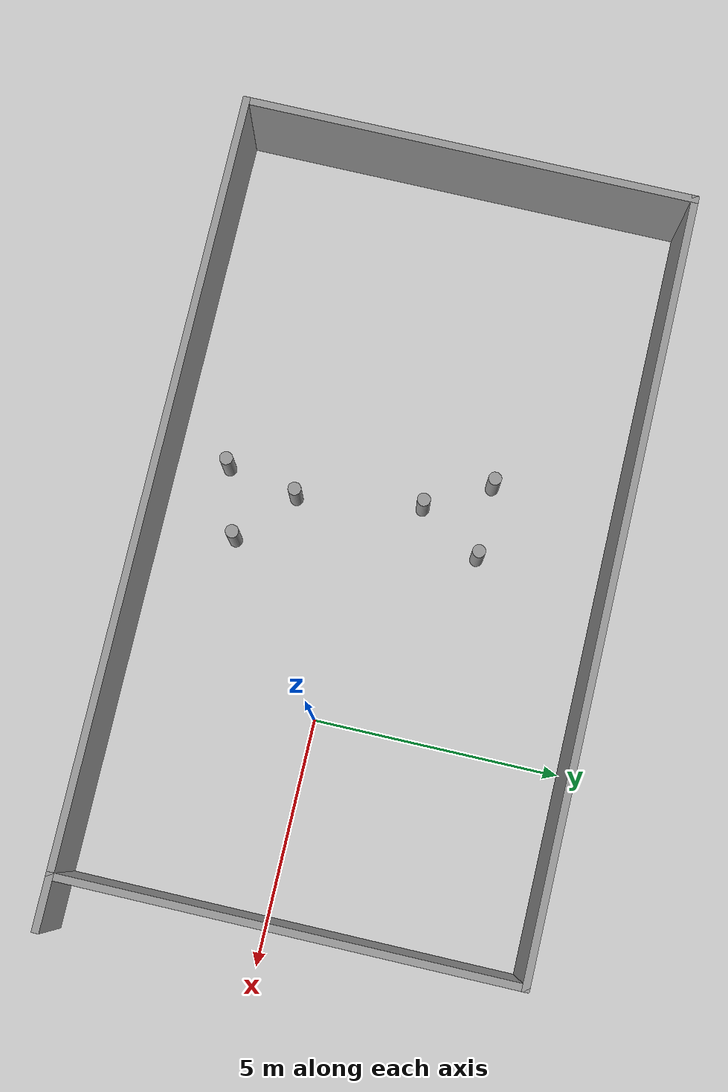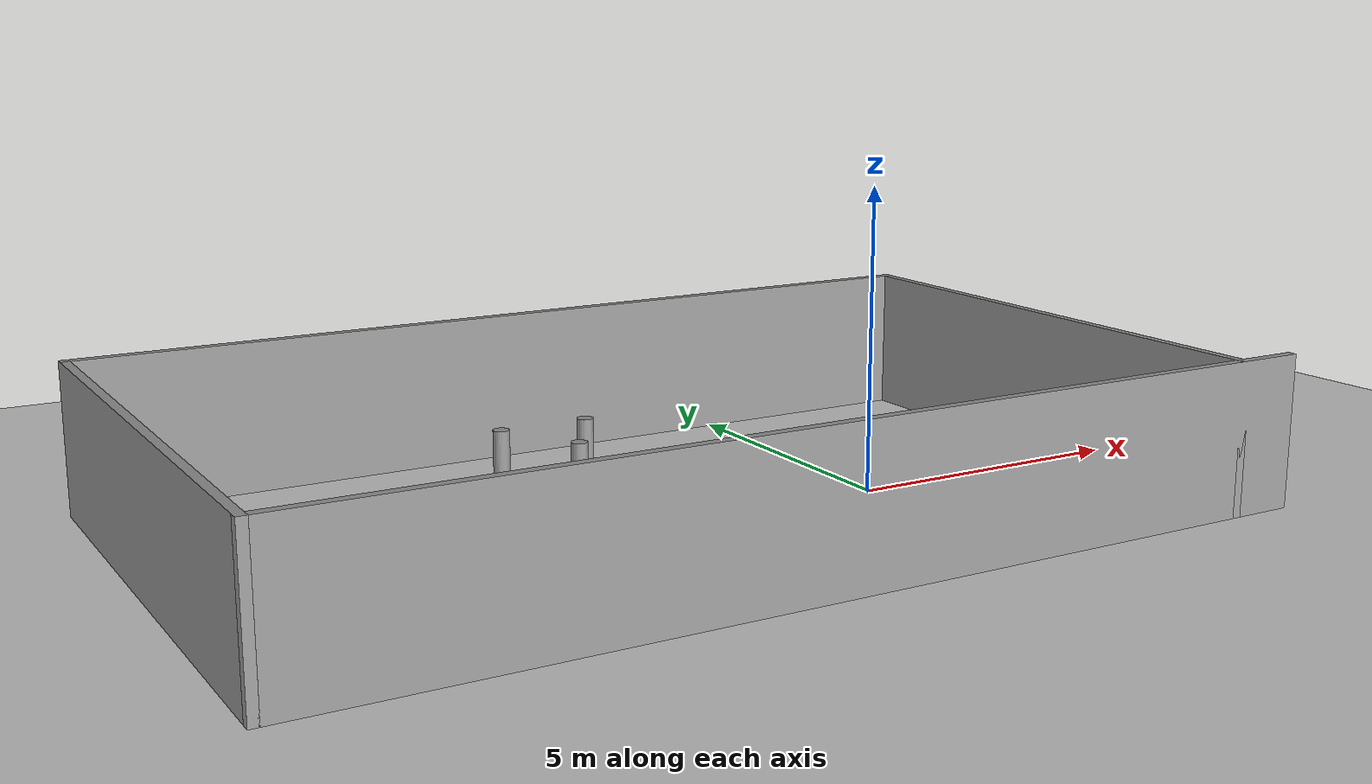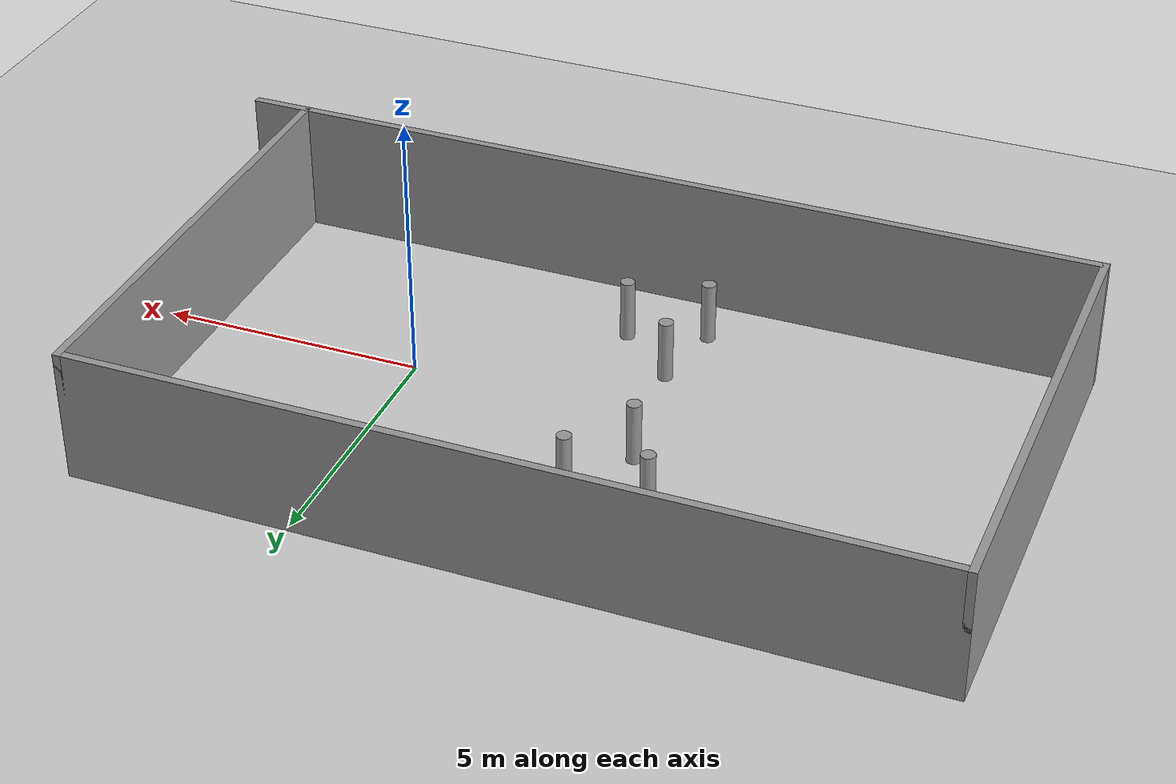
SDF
<sdf version="1.7">
 <world name="default">
  <model name="ground_plane">
   <static>1</static>
   <link name="link">
    <collision name="collision">
     <geometry><plane><normal>0 0 1</normal><size>100 100</size></plane></geometry>
     <surface>
      <contact><collide_bitmask>65535</collide_bitmask></contact>
      <friction><ode><mu>100</mu><mu2>50</mu2></ode></friction>
     </surface>
    </collision>
    <visual name="visual">
     <cast_shadows>0</cast_shadows>
     <geometry><plane><normal>0 0 1</normal><size>100 100</size></plane></geometry>
     <material>
      <script><uri>file://media/materials/scripts/gazebo.material</uri><name>Gazebo/Grey</name></script>
     </material>
    </visual>
   </link>
  </model>
  <model name="room">
   <pose>-3.22084 0.5121 0 0 -0 0</pose>
   <link name="Wall_3">
    <collision name="Wall_3_Collision">
     <geometry><box><size>16.75 0.15 2.5</size></box></geometry>
     <pose>0 0 1.25 0 -0 0</pose>
    </collision>
    <visual name="Wall_3_Visual">
     <pose>0 0 1.25 0 -0 0</pose>
     <geometry><box><size>16.75 0.15 2.5</size></box></geometry>
     <material>
      <script><uri>file://media/materials/scripts/gazebo.material</uri><name>Gazebo/Grey</name></script>
      <ambient>1 1 1 1</ambient>
     </material>
     <meta><layer>0</layer></meta>
    </visual>
    <pose>0 -4.55 0 0 -0 0</pose>
   </link>
   <link name="Wall_6">
    <collision name="Wall_6_Collision">
     <geometry><box><size>9.25 0.15 2.5</size></box></geometry>
     <pose>0 0 1.25 0 -0 0</pose>
    </collision>
    <visual name="Wall_6_Visual">
     <pose>0 0 1.25 0 -0 0</pose>
     <geometry><box><size>9.25 0.15 2.5</size></box></geometry>
     <material>
      <script><uri>file://media/materials/scripts/gazebo.material</uri><name>Gazebo/Grey</name></script>
      <ambient>1 1 1 1</ambient>
     </material>
     <meta><layer>0</layer></meta>
    </visual>
    <pose>-8.3 0 0 0 -0 1.5708</pose>
   </link>
   <link name="Wall_7">
    <collision name="Wall_7_Collision">
     <geometry><box><size>15.75 0.15 2.5</size></box></geometry>
     <pose>0 0 1.25 0 -0 0</pose>
    </collision>
    <visual name="Wall_7_Visual">
     <pose>0 0 1.25 0 -0 0</pose>
     <geometry><box><size>15.75 0.15 2.5</size></box></geometry>
     <material>
      <script><uri>file://media/materials/scripts/gazebo.material</uri><name>Gazebo/Grey</name></script>
      <ambient>1 1 1 1</ambient>
     </material>
     <meta><layer>0</layer></meta>
    </visual>
    <pose>-0.5 4.55 0 0 -0 0</pose>
   </link>
   <link name="Wall_8">
    <collision name="Wall_8_Collision">
     <geometry><box><size>9.25 0.15 2.5</size></box></geometry>
     <pose>0 0 1.25 0 -0 0</pose>
    </collision>
    <visual name="Wall_8_Visual">
     <pose>0 0 1.25 0 -0 0</pose>
     <geometry><box><size>9.25 0.15 2.5</size></box></geometry>
     <material>
      <script><uri>file://media/materials/scripts/gazebo.material</uri><name>Gazebo/Grey</name></script>
      <ambient>1 1 1 1</ambient>
     </material>
     <meta><layer>0</layer></meta>
    </visual>
    <pose>7.3 0 0 0 -0 -1.5708</pose>
   </link>
   <static>1</static>
  </model>
  <model name="triangle_lattice_0">
   <model name="smaller_cylinder">
    <model name="smaller_cylinder_1">
     <link name="link">
      <inertial>
       <mass>0.0872829</mass>
       <inertia>
        <ixx>0.0108064</ixx>
        <ixy>0</ixy>
        <ixz>0</ixz>
        <iyy>0.0108064</iyy>
        <iyz>0</iyz>
        <izz>0.000796093</izz>
       </inertia>
      </inertial>
      <visual name="visual">
       <geometry><cylinder><radius>0.135062</radius><length>1.19624</length></cylinder></geometry>
       <material>
        <script><name>Gazebo/Grey</name><uri>file://media/materials/scripts/gazebo.material</uri></script>
        <shader type="pixel"/>
       </material>
      </visual>
      <collision name="collision">
       <geometry><cylinder><radius>0.135062</radius><length>1.19624</length></cylinder></geometry>
       <surface>
        <friction>
         <ode><mu>1</mu><mu2>1</mu2><fdir1>0 0 0</fdir1><slip1>0</slip1><slip2>0</slip2></ode>
         <torsional>
          <coefficient>1</coefficient>
          <patch_radius>0</patch_radius>
          <surface_radius>0</surface_radius>
          <use_patch_radius>1</use_patch_radius>
          <ode><slip>0</slip></ode>
         </torsional>
        </friction>
        <bounce><restitution_coefficient>0</restitution_coefficient><threshold>1e+06</threshold></bounce>
        <contact>
         <collide_without_contact>0</collide_without_contact>
         <collide_without_contact_bitmask>1</collide_without_contact_bitmask>
         <collide_bitmask>1</collide_bitmask>
         <ode>
          <soft_cfm>0</soft_cfm>
          <soft_erp>0.2</soft_erp>
          <kp>1e+13</kp>
          <kd>1</kd>
          <max_vel>0.01</max_vel>
          <min_depth>0</min_depth>
         </ode>
         <bullet>
          <split_impulse>1</split_impulse>
          <split_impulse_penetration_threshold>-0.01</split_impulse_penetration_threshold>
          <soft_cfm>0</soft_cfm>
          <soft_erp>0.2</soft_erp>
          <kp>1e+13</kp>
          <kd>1</kd>
         </bullet>
        </contact>
       </surface>
      </collision>
     </link>
     <static>0</static>
     <pose>0.044198 -0.101528 0 0 -0 0</pose>
    </model>
    <static>1</static>
    <allow_auto_disable>0</allow_auto_disable>
    <pose>-3.76148 0.681051 0 0 -0 0</pose>
   </model>
   <model name="smaller_cylinder_0">
    <model name="smaller_cylinder_1">
     <link name="link">
      <inertial>
       <mass>0.0872829</mass>
       <inertia>
        <ixx>0.0108064</ixx>
        <ixy>0</ixy>
        <ixz>0</ixz>
        <iyy>0.0108064</iyy>
        <iyz>0</iyz>
        <izz>0.000796093</izz>
       </inertia>
      </inertial>
      <visual name="visual">
       <geometry><cylinder><radius>0.135062</radius><length>1.19624</length></cylinder></geometry>
       <material>
        <script><name>Gazebo/Grey</name><uri>file://media/materials/scripts/gazebo.material</uri></script>
        <shader type="pixel"/>
       </material>
      </visual>
      <collision name="collision">
       <geometry><cylinder><radius>0.135062</radius><length>1.19624</length></cylinder></geometry>
       <surface>
        <friction>
         <ode><mu>1</mu><mu2>1</mu2><fdir1>0 0 0</fdir1><slip1>0</slip1><slip2>0</slip2></ode>
         <torsional>
          <coefficient>1</coefficient>
          <patch_radius>0</patch_radius>
          <surface_radius>0</surface_radius>
          <use_patch_radius>1</use_patch_radius>
          <ode><slip>0</slip></ode>
         </torsional>
        </friction>
        <bounce><restitution_coefficient>0</restitution_coefficient><threshold>1e+06</threshold></bounce>
        <contact>
         <collide_without_contact>0</collide_without_contact>
         <collide_without_contact_bitmask>1</collide_without_contact_bitmask>
         <collide_bitmask>1</collide_bitmask>
         <ode>
          <soft_cfm>0</soft_cfm>
          <soft_erp>0.2</soft_erp>
          <kp>1e+13</kp>
          <kd>1</kd>
          <max_vel>0.01</max_vel>
          <min_depth>0</min_depth>
         </ode>
         <bullet>
          <split_impulse>1</split_impulse>
          <split_impulse_penetration_threshold>-0.01</split_impulse_penetration_threshold>
          <soft_cfm>0</soft_cfm>
          <soft_erp>0.2</soft_erp>
          <kp>1e+13</kp>
          <kd>1</kd>
         </bullet>
        </contact>
       </surface>
      </collision>
     </link>
     <static>0</static>
     <pose>0.044198 -0.101528 0 0 -0 0</pose>
    </model>
    <static>1</static>
    <allow_auto_disable>0</allow_auto_disable>
    <pose>-2.72489 1.77147 0 0 -0 0</pose>
   </model>
   <model name="smaller_cylinder_1">
    <model name="smaller_cylinder_1">
     <link name="link">
      <inertial>
       <mass>0.0872829</mass>
       <inertia>
        <ixx>0.0108064</ixx>
        <ixy>0</ixy>
        <ixz>0</ixz>
        <iyy>0.0108064</iyy>
        <iyz>0</iyz>
        <izz>0.000796093</izz>
       </inertia>
      </inertial>
      <visual name="visual">
       <geometry><cylinder><radius>0.135062</radius><length>1.19624</length></cylinder></geometry>
       <material>
        <script><name>Gazebo/Grey</name><uri>file://media/materials/scripts/gazebo.material</uri></script>
        <shader type="pixel"/>
       </material>
      </visual>
      <collision name="collision">
       <geometry><cylinder><radius>0.135062</radius><length>1.19624</length></cylinder></geometry>
       <surface>
        <friction>
         <ode><mu>1</mu><mu2>1</mu2><fdir1>0 0 0</fdir1><slip1>0</slip1><slip2>0</slip2></ode>
         <torsional>
          <coefficient>1</coefficient>
          <patch_radius>0</patch_radius>
          <surface_radius>0</surface_radius>
          <use_patch_radius>1</use_patch_radius>
          <ode><slip>0</slip></ode>
         </torsional>
        </friction>
        <bounce><restitution_coefficient>0</restitution_coefficient><threshold>1e+06</threshold></bounce>
        <contact>
         <collide_without_contact>0</collide_without_contact>
         <collide_without_contact_bitmask>1</collide_without_contact_bitmask>
         <collide_bitmask>1</collide_bitmask>
         <ode>
          <soft_cfm>0</soft_cfm>
          <soft_erp>0.2</soft_erp>
          <kp>1e+13</kp>
          <kd>1</kd>
          <max_vel>0.01</max_vel>
          <min_depth>0</min_depth>
         </ode>
         <bullet>
          <split_impulse>1</split_impulse>
          <split_impulse_penetration_threshold>-0.01</split_impulse_penetration_threshold>
          <soft_cfm>0</soft_cfm>
          <soft_erp>0.2</soft_erp>
          <kp>1e+13</kp>
          <kd>1</kd>
         </bullet>
        </contact>
       </surface>
      </collision>
     </link>
     <static>0</static>
     <pose>0.044198 -0.101528 0 0 -0 0</pose>
    </model>
    <static>1</static>
    <allow_auto_disable>0</allow_auto_disable>
    <pose>-2.31989 0.319731 0 0 -0 0</pose>
   </model>
   <static>1</static>
   <pose>-3.27212 -0.624268 0.598111 0 -0 -0.805665</pose>
  </model>
  <model name="triangle_lattice_2">
   <model name="smaller_cylinder">
    <model name="smaller_cylinder_1">
     <link name="link">
      <inertial>
       <mass>0.0872829</mass>
       <inertia>
        <ixx>0.0108064</ixx>
        <ixy>0</ixy>
        <ixz>0</ixz>
        <iyy>0.0108064</iyy>
        <iyz>0</iyz>
        <izz>0.000796093</izz>
       </inertia>
      </inertial>
      <visual name="visual">
       <geometry><cylinder><radius>0.135062</radius><length>1.19624</length></cylinder></geometry>
       <material>
        <script><name>Gazebo/Grey</name><uri>file://media/materials/scripts/gazebo.material</uri></script>
        <shader type="pixel"/>
       </material>
      </visual>
      <collision name="collision">
       <geometry><cylinder><radius>0.135062</radius><length>1.19624</length></cylinder></geometry>
       <surface>
        <friction>
         <ode><mu>1</mu><mu2>1</mu2><fdir1>0 0 0</fdir1><slip1>0</slip1><slip2>0</slip2></ode>
         <torsional>
          <coefficient>1</coefficient>
          <patch_radius>0</patch_radius>
          <surface_radius>0</surface_radius>
          <use_patch_radius>1</use_patch_radius>
          <ode><slip>0</slip></ode>
         </torsional>
        </friction>
        <bounce><restitution_coefficient>0</restitution_coefficient><threshold>1e+06</threshold></bounce>
        <contact>
         <collide_without_contact>0</collide_without_contact>
         <collide_without_contact_bitmask>1</collide_without_contact_bitmask>
         <collide_bitmask>1</collide_bitmask>
         <ode>
          <soft_cfm>0</soft_cfm>
          <soft_erp>0.2</soft_erp>
          <kp>1e+13</kp>
          <kd>1</kd>
          <max_vel>0.01</max_vel>
          <min_depth>0</min_depth>
         </ode>
         <bullet>
          <split_impulse>1</split_impulse>
          <split_impulse_penetration_threshold>-0.01</split_impulse_penetration_threshold>
          <soft_cfm>0</soft_cfm>
          <soft_erp>0.2</soft_erp>
          <kp>1e+13</kp>
          <kd>1</kd>
         </bullet>
        </contact>
       </surface>
      </collision>
     </link>
     <static>0</static>
     <pose>0.044198 -0.101528 0 0 -0 0</pose>
    </model>
    <static>1</static>
    <allow_auto_disable>0</allow_auto_disable>
    <pose>-3.76148 0.681051 0 0 -0 0</pose>
   </model>
   <model name="smaller_cylinder_0">
    <model name="smaller_cylinder_1">
     <link name="link">
      <inertial>
       <mass>0.0872829</mass>
       <inertia>
        <ixx>0.0108064</ixx>
        <ixy>0</ixy>
        <ixz>0</ixz>
        <iyy>0.0108064</iyy>
        <iyz>0</iyz>
        <izz>0.000796093</izz>
       </inertia>
      </inertial>
      <visual name="visual">
       <geometry><cylinder><radius>0.135062</radius><length>1.19624</length></cylinder></geometry>
       <material>
        <script><name>Gazebo/Grey</name><uri>file://media/materials/scripts/gazebo.material</uri></script>
        <shader type="pixel"/>
       </material>
      </visual>
      <collision name="collision">
       <geometry><cylinder><radius>0.135062</radius><length>1.19624</length></cylinder></geometry>
       <surface>
        <friction>
         <ode><mu>1</mu><mu2>1</mu2><fdir1>0 0 0</fdir1><slip1>0</slip1><slip2>0</slip2></ode>
         <torsional>
          <coefficient>1</coefficient>
          <patch_radius>0</patch_radius>
          <surface_radius>0</surface_radius>
          <use_patch_radius>1</use_patch_radius>
          <ode><slip>0</slip></ode>
         </torsional>
        </friction>
        <bounce><restitution_coefficient>0</restitution_coefficient><threshold>1e+06</threshold></bounce>
        <contact>
         <collide_without_contact>0</collide_without_contact>
         <collide_without_contact_bitmask>1</collide_without_contact_bitmask>
         <collide_bitmask>1</collide_bitmask>
         <ode>
          <soft_cfm>0</soft_cfm>
          <soft_erp>0.2</soft_erp>
          <kp>1e+13</kp>
          <kd>1</kd>
          <max_vel>0.01</max_vel>
          <min_depth>0</min_depth>
         </ode>
         <bullet>
          <split_impulse>1</split_impulse>
          <split_impulse_penetration_threshold>-0.01</split_impulse_penetration_threshold>
          <soft_cfm>0</soft_cfm>
          <soft_erp>0.2</soft_erp>
          <kp>1e+13</kp>
          <kd>1</kd>
         </bullet>
        </contact>
       </surface>
      </collision>
     </link>
     <static>0</static>
     <pose>0.044198 -0.101528 0 0 -0 0</pose>
    </model>
    <static>1</static>
    <allow_auto_disable>0</allow_auto_disable>
    <pose>-2.72489 1.77147 0 0 -0 0</pose>
   </model>
   <model name="smaller_cylinder_1">
    <model name="smaller_cylinder_1">
     <link name="link">
      <inertial>
       <mass>0.0872829</mass>
       <inertia>
        <ixx>0.0108064</ixx>
        <ixy>0</ixy>
        <ixz>0</ixz>
        <iyy>0.0108064</iyy>
        <iyz>0</iyz>
        <izz>0.000796093</izz>
       </inertia>
      </inertial>
      <visual name="visual">
       <geometry><cylinder><radius>0.135062</radius><length>1.19624</length></cylinder></geometry>
       <material>
        <script><name>Gazebo/Grey</name><uri>file://media/materials/scripts/gazebo.material</uri></script>
        <shader type="pixel"/>
       </material>
      </visual>
      <collision name="collision">
       <geometry><cylinder><radius>0.135062</radius><length>1.19624</length></cylinder></geometry>
       <surface>
        <friction>
         <ode><mu>1</mu><mu2>1</mu2><fdir1>0 0 0</fdir1><slip1>0</slip1><slip2>0</slip2></ode>
         <torsional>
          <coefficient>1</coefficient>
          <patch_radius>0</patch_radius>
          <surface_radius>0</surface_radius>
          <use_patch_radius>1</use_patch_radius>
          <ode><slip>0</slip></ode>
         </torsional>
        </friction>
        <bounce><restitution_coefficient>0</restitution_coefficient><threshold>1e+06</threshold></bounce>
        <contact>
         <collide_without_contact>0</collide_without_contact>
         <collide_without_contact_bitmask>1</collide_without_contact_bitmask>
         <collide_bitmask>1</collide_bitmask>
         <ode>
          <soft_cfm>0</soft_cfm>
          <soft_erp>0.2</soft_erp>
          <kp>1e+13</kp>
          <kd>1</kd>
          <max_vel>0.01</max_vel>
          <min_depth>0</min_depth>
         </ode>
         <bullet>
          <split_impulse>1</split_impulse>
          <split_impulse_penetration_threshold>-0.01</split_impulse_penetration_threshold>
          <soft_cfm>0</soft_cfm>
          <soft_erp>0.2</soft_erp>
          <kp>1e+13</kp>
          <kd>1</kd>
         </bullet>
        </contact>
       </surface>
      </collision>
     </link>
     <static>0</static>
     <pose>0.044198 -0.101528 0 0 -0 0</pose>
    </model>
    <static>1</static>
    <allow_auto_disable>0</allow_auto_disable>
    <pose>-2.31989 0.319731 0 0 -0 0</pose>
   </model>
   <static>1</static>
   <pose>-1.168 -1.38111 0.598111 0 -0 0.562142</pose>
  </model>
 </world>
</sdf>
